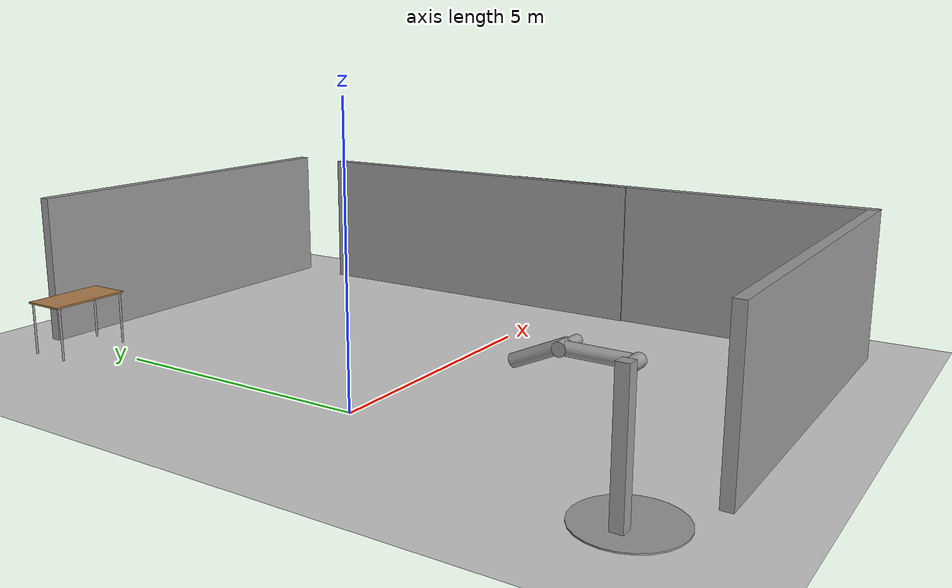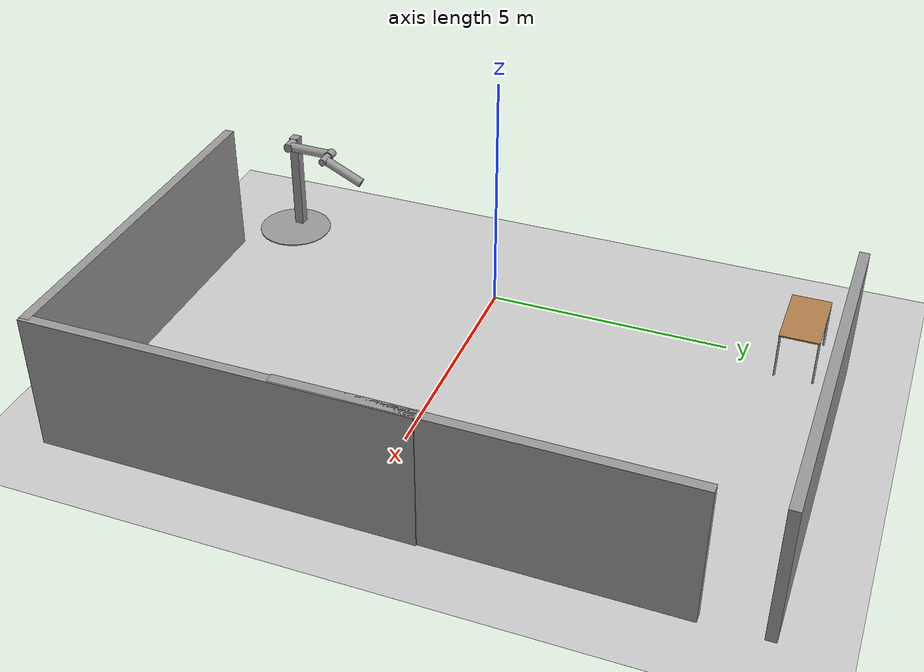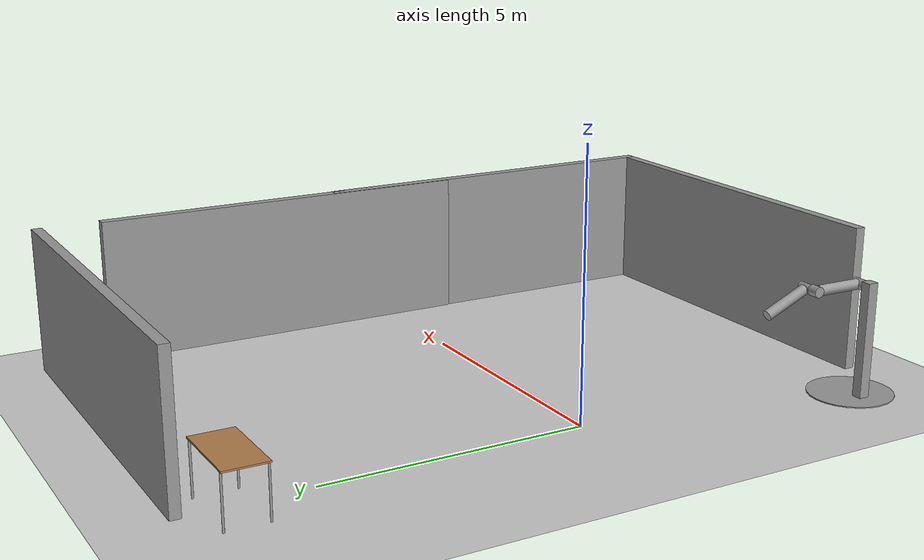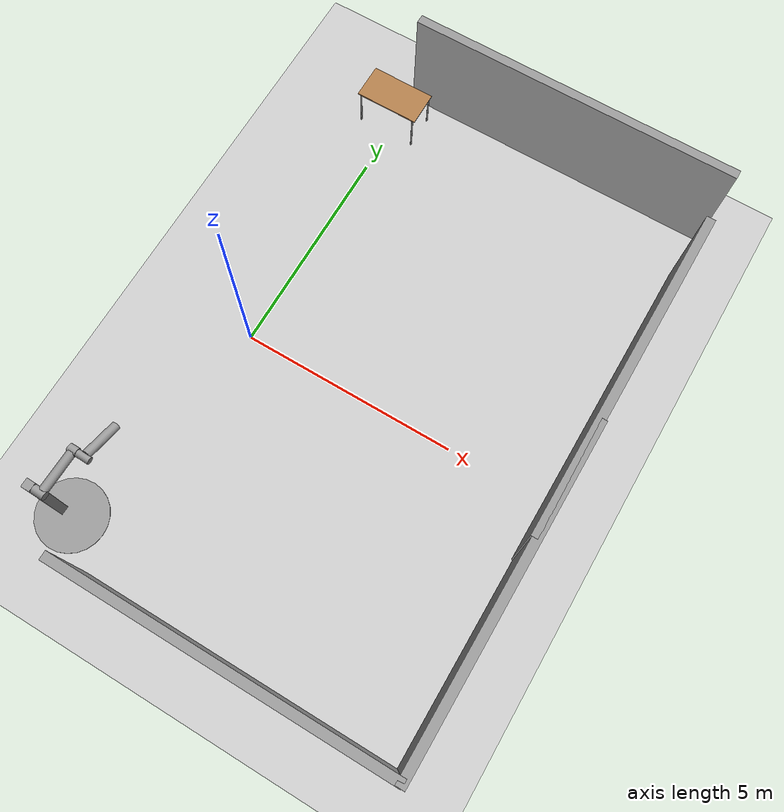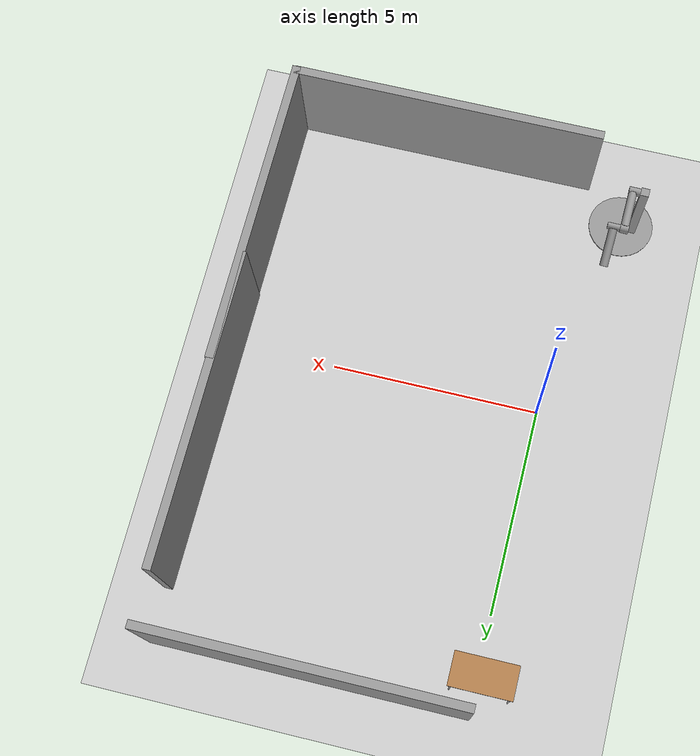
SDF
<sdf version="1.6">
 <world name="default">
  <model name="ground_plane">
   <static>1</static>
   <link name="link">
    <collision name="collision">
     <geometry><plane><normal>0 0 1</normal><size>100 100</size></plane></geometry>
     <surface><friction><ode><mu>100</mu><mu2>50</mu2></ode></friction></surface>
    </collision>
    <visual name="visual">
     <cast_shadows>0</cast_shadows>
     <geometry><plane><normal>0 0 1</normal><size>100 100</size></plane></geometry>
     <material>
      <script><uri>file://media/materials/scripts/gazebo.material</uri><name>Gazebo/Grey</name></script>
     </material>
    </visual>
   </link>
  </model>
  <model name="table">
   <static>1</static>
   <link name="link">
    <collision name="surface">
     <pose>0 0 1 0 -0 0</pose>
     <geometry><box><size>1.5 0.8 0.03</size></box></geometry>
     <surface><friction><ode><mu>0.6</mu><mu2>0.6</mu2></ode></friction></surface>
    </collision>
    <visual name="visual1">
     <pose>0 0 1 0 -0 0</pose>
     <geometry><box><size>1.5 0.8 0.03</size></box></geometry>
     <material>
      <script><uri>file://media/materials/scripts/gazebo.material</uri><name>Gazebo/Wood</name></script>
     </material>
    </visual>
    <collision name="front_left_leg">
     <pose>0.68 0.38 0.5 0 -0 0</pose>
     <geometry><cylinder><radius>0.02</radius><length>1</length></cylinder></geometry>
    </collision>
    <visual name="front_left_leg">
     <pose>0.68 0.38 0.5 0 -0 0</pose>
     <geometry><cylinder><radius>0.02</radius><length>1</length></cylinder></geometry>
     <material>
      <script><uri>file://media/materials/scripts/gazebo.material</uri><name>Gazebo/Grey</name></script>
     </material>
    </visual>
    <collision name="front_right_leg">
     <pose>0.68 -0.38 0.5 0 -0 0</pose>
     <geometry><cylinder><radius>0.02</radius><length>1</length></cylinder></geometry>
    </collision>
    <visual name="front_right_leg">
     <pose>0.68 -0.38 0.5 0 -0 0</pose>
     <geometry><cylinder><radius>0.02</radius><length>1</length></cylinder></geometry>
     <material>
      <script><uri>file://media/materials/scripts/gazebo.material</uri><name>Gazebo/Grey</name></script>
     </material>
    </visual>
    <collision name="back_right_leg">
     <pose>-0.68 -0.38 0.5 0 -0 0</pose>
     <geometry><cylinder><radius>0.02</radius><length>1</length></cylinder></geometry>
    </collision>
    <visual name="back_right_leg">
     <pose>-0.68 -0.38 0.5 0 -0 0</pose>
     <geometry><cylinder><radius>0.02</radius><length>1</length></cylinder></geometry>
     <material>
      <script><uri>file://media/materials/scripts/gazebo.material</uri><name>Gazebo/Grey</name></script>
     </material>
    </visual>
    <collision name="back_left_leg">
     <pose>-0.68 0.38 0.5 0 -0 0</pose>
     <geometry><cylinder><radius>0.02</radius><length>1</length></cylinder></geometry>
    </collision>
    <visual name="back_left_leg">
     <pose>-0.68 0.38 0.5 0 -0 0</pose>
     <geometry><cylinder><radius>0.02</radius><length>1</length></cylinder></geometry>
     <material>
      <script><uri>file://media/materials/scripts/gazebo.material</uri><name>Gazebo/Grey</name></script>
     </material>
    </visual>
   </link>
   <pose>-0.108598 6.44893 0 0 -0 0</pose>
  </model>
  <model name="grey_wall_clone">
   <static>1</static>
   <link name="link">
    <pose>0 0 1.4 0 -0 0</pose>
    <collision name="collision"><geometry><box><size>7.5 0.2 2.8</size></box></geometry></collision>
    <visual name="visual">
     <cast_shadows>0</cast_shadows>
     <geometry><box><size>7.5 0.2 2.8</size></box></geometry>
     <material>
      <script>
       <uri>model://grey_wall/materials/scripts</uri>
       <uri>model://grey_wall/materials/textures</uri>
       <name>vrc/grey_wall</name>
      </script>
     </material>
    </visual>
   </link>
   <pose>3.72276 7.30577 0 0 -0 0</pose>
  </model>
  <model name="grey_wall_clone_clone">
   <static>1</static>
   <link name="link">
    <pose>0 0 1.4 0 -0 0</pose>
    <collision name="collision"><geometry><box><size>7.5 0.2 2.8</size></box></geometry></collision>
    <visual name="visual">
     <cast_shadows>0</cast_shadows>
     <geometry><box><size>7.5 0.2 2.8</size></box></geometry>
     <material>
      <script>
       <uri>model://grey_wall/materials/scripts</uri>
       <uri>model://grey_wall/materials/textures</uri>
       <name>vrc/grey_wall</name>
      </script>
     </material>
    </visual>
   </link>
   <pose>3.65879 -6.15994 0 0 -0 0</pose>
  </model>
  <model name="grey_wall_clone_0_clone_clone">
   <static>1</static>
   <link name="link">
    <pose>0 0 1.4 0 -0 0</pose>
    <collision name="collision"><geometry><box><size>7.5 0.2 2.8</size></box></geometry></collision>
    <visual name="visual">
     <cast_shadows>0</cast_shadows>
     <geometry><box><size>7.5 0.2 2.8</size></box></geometry>
     <material>
      <script>
       <uri>model://grey_wall/materials/scripts</uri>
       <uri>model://grey_wall/materials/textures</uri>
       <name>vrc/grey_wall</name>
      </script>
     </material>
    </visual>
   </link>
   <pose>7.39341 -2.49757 0 0 0 -1.57526</pose>
  </model>
  <model name="grey_wall_clone_0_clone_clone_clone">
   <static>1</static>
   <link name="link">
    <pose>0 0 1.4 0 -0 0</pose>
    <collision name="collision"><geometry><box><size>7.5 0.2 2.8</size></box></geometry></collision>
    <visual name="visual">
     <cast_shadows>0</cast_shadows>
     <geometry><box><size>7.5 0.2 2.8</size></box></geometry>
     <material>
      <script>
       <uri>model://grey_wall/materials/scripts</uri>
       <uri>model://grey_wall/materials/textures</uri>
       <name>vrc/grey_wall</name>
      </script>
     </material>
    </visual>
   </link>
   <pose>7.38705 2.36769 0 0 0 -1.57526</pose>
  </model>
  <model name="double_pendulum_with_base">
   <link name="base">
    <inertial>
     <mass>100</mass>
     <inertia><ixx>1</ixx><ixy>0</ixy><ixz>0</ixz><iyy>1</iyy><iyz>0</iyz><izz>1</izz></inertia>
    </inertial>
    <visual name="vis_plate_on_ground">
     <pose>0 0 0.01 0 -0 0</pose>
     <geometry><cylinder><radius>0.8</radius><length>0.02</length></cylinder></geometry>
     <material>
      <script><uri>file://media/materials/scripts/gazebo.material</uri><name>Gazebo/Grey</name></script>
     </material>
    </visual>
    <visual name="vis_pole">
     <pose>-0.275 0 1.1 0 -0 0</pose>
     <geometry><box><size>0.2 0.2 2.2</size></box></geometry>
     <material>
      <script><uri>file://media/materials/scripts/gazebo.material</uri><name>Gazebo/Grey</name></script>
     </material>
    </visual>
    <collision name="col_plate_on_ground">
     <pose>0 0 0.01 0 -0 0</pose>
     <geometry><cylinder><radius>0.8</radius><length>0.02</length></cylinder></geometry>
    </collision>
    <collision name="col_pole">
     <pose>-0.275 0 1.1 0 -0 0</pose>
     <geometry><box><size>0.2 0.2 2.2</size></box></geometry>
    </collision>
   </link>
   <link name="upper_link">
    <pose>0 0 2.1 -1.5708 0 0</pose>
    <inertial>
     <pose>0 0 0.5 0 -0 0</pose>
     <inertia><ixx>1</ixx><ixy>0</ixy><ixz>0</ixz><iyy>1</iyy><iyz>0</iyz><izz>1</izz></inertia>
     <mass>1</mass>
    </inertial>
    <visual name="vis_upper_joint">
     <pose>-0.05 0 0 3.14159 1.57079 3.14159</pose>
     <geometry><cylinder><radius>0.1</radius><length>0.3</length></cylinder></geometry>
     <material>
      <script><uri>file://media/materials/scripts/gazebo.material</uri><name>Gazebo/Grey</name></script>
     </material>
    </visual>
    <visual name="vis_lower_joint">
     <pose>0 0 1 3.14159 1.57079 3.14159</pose>
     <geometry><cylinder><radius>0.1</radius><length>0.2</length></cylinder></geometry>
     <material>
      <script><uri>file://media/materials/scripts/gazebo.material</uri><name>Gazebo/Grey</name></script>
     </material>
    </visual>
    <visual name="vis_cylinder">
     <pose>0 0 0.5 0 -0 0</pose>
     <geometry><cylinder><radius>0.1</radius><length>0.9</length></cylinder></geometry>
     <material>
      <script><uri>file://media/materials/scripts/gazebo.material</uri><name>Gazebo/Grey</name></script>
     </material>
    </visual>
    <collision name="col_upper_joint">
     <pose>-0.05 0 0 3.14159 1.57079 3.14159</pose>
     <geometry><cylinder><radius>0.1</radius><length>0.3</length></cylinder></geometry>
    </collision>
    <collision name="col_lower_joint">
     <pose>0 0 1 3.14159 1.57079 3.14159</pose>
     <geometry><cylinder><radius>0.1</radius><length>0.2</length></cylinder></geometry>
    </collision>
    <collision name="col_cylinder">
     <pose>0 0 0.5 0 -0 0</pose>
     <geometry><cylinder><radius>0.1</radius><length>0.9</length></cylinder></geometry>
    </collision>
   </link>
   <link name="lower_link">
    <pose>0.25 1 2.1 -2 0 0</pose>
    <inertial>
     <pose>0 0 0.5 0 -0 0</pose>
     <inertia><ixx>1</ixx><ixy>0</ixy><ixz>0</ixz><iyy>1</iyy><iyz>0</iyz><izz>1</izz></inertia>
     <mass>1</mass>
    </inertial>
    <visual name="vis_lower_joint">
     <pose>0 0 0 3.14159 1.57079 3.14159</pose>
     <geometry><cylinder><radius>0.08</radius><length>0.3</length></cylinder></geometry>
     <material>
      <script><uri>file://media/materials/scripts/gazebo.material</uri><name>Gazebo/Grey</name></script>
     </material>
    </visual>
    <visual name="vis_cylinder">
     <pose>0 0 0.5 0 -0 0</pose>
     <geometry><cylinder><radius>0.1</radius><length>0.9</length></cylinder></geometry>
     <material>
      <script><uri>file://media/materials/scripts/gazebo.material</uri><name>Gazebo/Grey</name></script>
     </material>
    </visual>
    <collision name="col_lower_joint">
     <pose>0 0 0 3.14159 1.57079 3.14159</pose>
     <geometry><cylinder><radius>0.08</radius><length>0.3</length></cylinder></geometry>
    </collision>
    <collision name="col_cylinder">
     <pose>0 0 0.5 0 -0 0</pose>
     <geometry><cylinder><radius>0.1</radius><length>0.9</length></cylinder></geometry>
    </collision>
   </link>
   <joint name="upper_joint" type="revolute">
    <parent>base</parent>
    <child>upper_link</child>
    <axis>
     <xyz>1 0 0</xyz>
     <use_parent_model_frame>0</use_parent_model_frame>
     <limit><lower>-1e+16</lower><upper>1e+16</upper></limit>
     <dynamics><spring_reference>0</spring_reference><spring_stiffness>0</spring_stiffness></dynamics>
    </axis>
   </joint>
   <joint name="lower_joint" type="revolute">
    <parent>upper_link</parent>
    <child>lower_link</child>
    <axis>
     <xyz>1 0 0</xyz>
     <use_parent_model_frame>0</use_parent_model_frame>
     <limit><lower>-1e+16</lower><upper>1e+16</upper></limit>
     <dynamics><spring_reference>0</spring_reference><spring_stiffness>0</spring_stiffness></dynamics>
    </axis>
   </joint>
   <pose>-1.05894 -5.25207 0 0 -0 -0.024742</pose>
  </model>
 </world>
</sdf>
